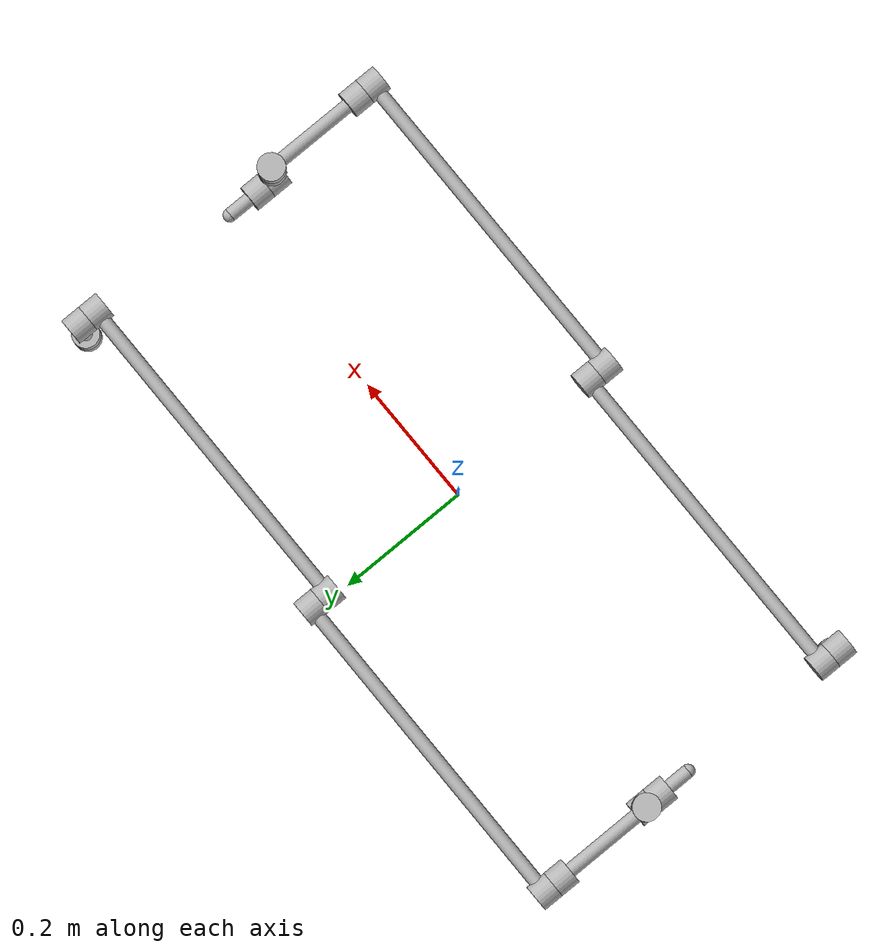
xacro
<?xml version="1.0"?>
<robot name="two_robot6R" xmlns:xacro="http://www.ros.org/wiki/xacro">
  <xacro:property name="radius" value="0.5"/>
  <xacro:property name="spacing" value="0.52"/>

  <xacro:include filename="$(find pyrobopath_examples)/urdf/robot6R.macro.xacro"/>
  <xacro:robot6R_macro prefix="rob1_"/>
  <xacro:robot6R_macro prefix="rob2_"/>

  <!-- Colors -->
  <material name="grey">
    <color rgba="0.7 0.7 0.7 1.0"/>
  </material>

  <!-- Connect to world -->
  <link name="world"/>
  <joint name="world_rob1_base" type="fixed">
    <parent link="world"/>
    <child link = "rob1_base_link"/>
    <origin xyz="-${radius} -${spacing/2} 0.0" rpy="0.0 0.0 0.0"/>
  </joint>
  <joint name="world_rob2_base" type="fixed">
    <parent link="world"/>
    <child link = "rob2_base_link"/>
    <origin xyz="${radius} ${spacing/2} 0.0" rpy="0.0 0.0 ${pi}"/>
  </joint>

  <!-- ROS2 control -->
  <xacro:include filename="$(find pyrobopath_examples)/urdf/robot6R.ros2_control.xacro"/>

  <ros2_control name="two_robot_ros2_control" type="system">
    <hardware>
      <plugin>mock_components/GenericSystem</plugin>
    </hardware>
    <xacro:robot6R_ros2_control prefix="rob1_"/>
    <xacro:robot6R_ros2_control prefix="rob2_"/>
  </ros2_control>
</robot>

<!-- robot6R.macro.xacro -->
<robot xmlns:xacro="http://www.ros.org/wiki/xacro">

  <!--
  A fictitious robot model for testing purposes.
  The kinematics is roughly inspired by the universal robots ur10.
  -->

  <xacro:macro name="robot6R_macro" params="prefix">

    <!-- joint properties -->
    <xacro:property name="joint_radius" value="0.02" />
    <xacro:property name="joint_length" value="0.03" />

    <!-- link properties -->
    <xacro:property name="link_radius" value="0.01" />
    <xacro:property name="link1_length" value="0.15" />
    <xacro:property name="link2_length" value="0.5" />
    <xacro:property name="link3_length" value="0.5" />
    <xacro:property name="link4_length" value="0.15" />
    <xacro:property name="link5_length" value="0.10" />
    <xacro:property name="link6_length" value="0.05" />

    <!-- links -->
    <link name="${prefix}base_link">
      <visual name="joint">
        <origin xyz="0 0 ${joint_length / 2.0}" rpy="0 0 0" />
        <geometry>
          <cylinder length="${joint_length}" radius="${joint_radius}"/>
        </geometry>
        <material name="grey"/>
      </visual>
    </link>
    <link name="${prefix}link1">
      <visual name="joint1">
        <origin xyz="0 0 0" rpy="0 0 0" />
        <geometry>
          <cylinder length="${joint_length}" radius="${joint_radius}"/>
        </geometry>
        <material name="grey"/>
      </visual>
      <visual name="link">
        <origin xyz="0 0 ${link1_length / 2.0}" rpy="0 0 0" />
        <geometry>
          <cylinder length="${link1_length}" radius="${link_radius}"/>
        </geometry>
        <material name="grey"/>
      </visual>
      <visual name="joint2">
        <origin xyz="0 0 ${link1_length}" rpy="${pi / 2.0} 0 0" />
        <geometry>
          <cylinder length="${joint_length}" radius="${joint_radius}"/>
        </geometry>
        <material name="grey"/>
      </visual>
    </link>
    <link name="${prefix}link2">
      <visual name="joint2">
        <origin xyz="0 0 0" rpy="${pi / 2.0} 0 0" />
        <geometry>
          <cylinder length="${joint_length}" radius="${joint_radius}"/>
        </geometry>
        <material name="grey"/>
      </visual>
      <visual name="link">
        <origin xyz="0 0 ${link2_length / 2.0}" rpy="0 0 0" />
        <geometry>
          <cylinder length="${link2_length}" radius="${link_radius}"/>
        </geometry>
        <material name="grey"/>
      </visual>
      <visual name="joint3">
        <origin xyz="0 0 ${link2_length}" rpy="${pi / 2.0} 0 0" />
        <geometry>
          <cylinder length="${joint_length}" radius="${joint_radius}"/>
        </geometry>
        <material name="grey"/>
      </visual>
    </link>
    <link name="${prefix}link3">
      <visual name="joint3">
        <origin xyz="0 0 0" rpy="${pi / 2.0} 0 0" />
        <geometry>
          <cylinder length="${joint_length}" radius="${joint_radius}"/>
        </geometry>
        <material name="grey"/>
      </visual>
      <visual name="link">
        <origin xyz="0 0 ${link3_length / 2.0}" rpy="0 0 0" />
        <geometry>
          <cylinder length="${link3_length}" radius="${link_radius}"/>
        </geometry>
        <material name="grey"/>
      </visual>
      <visual name="joint4">
        <origin xyz="0 0 ${link3_length}" rpy="${pi / 2.0} 0 0" />
        <geometry>
          <cylinder length="${joint_length}" radius="${joint_radius}"/>
        </geometry>
        <material name="grey"/>
      </visual>
    </link>
    <link name="${prefix}link4">
      <visual name="joint4">
        <origin xyz="0 0 0" rpy="${pi / 2.0} 0 0" />
        <geometry>
          <cylinder length="${joint_length}" radius="${joint_radius}"/>
        </geometry>
        <material name="grey"/>
      </visual>
      <visual name="link">
        <origin xyz="0 ${link4_length / 2.0} 0" rpy="${pi / 2.0} 0 0" />
        <geometry>
          <cylinder length="${link4_length}" radius="${link_radius}"/>
        </geometry>
        <material name="grey"/>
      </visual>
      <visual name="joint5">
        <origin xyz="0 ${link4_length} 0" rpy="0 0 0" />
        <geometry>
          <cylinder length="${joint_length}" radius="${joint_radius}"/>
        </geometry>
        <material name="grey"/>
      </visual>
    </link>
    <link name="${prefix}link5">
      <visual name="joint5">
        <origin xyz="0 0 0" rpy="0 0 0" />
        <geometry>
          <cylinder length="${joint_length}" radius="${joint_radius}"/>
        </geometry>
        <material name="grey"/>
      </visual>
      <visual name="link">
        <origin xyz="0 0 ${link5_length / 2.0}" rpy="0 0 0" />
        <geometry>
          <cylinder length="${link5_length}" radius="${link_radius}"/>
        </geometry>
        <material name="grey"/>
      </visual>
      <visual name="joint6">
        <origin xyz="0 0 ${link5_length}" rpy="${pi / 2.0} 0 0" />
        <geometry>
          <cylinder length="${joint_length}" radius="${joint_radius}"/>
        </geometry>
        <material name="grey"/>
      </visual>
    </link>
    <link name="${prefix}link6">
      <visual name="joint6">
        <origin xyz="0 0 0" rpy="${pi / 2.0} 0 0" />
        <geometry>
          <cylinder length="${joint_length}" radius="${joint_radius}"/>
        </geometry>
        <material name="grey"/>
      </visual>
      <visual name="link">
        <origin xyz="0 ${link6_length / 2.0} 0" rpy="${-pi / 2.0} 0 0" />
        <geometry>
          <cylinder length="${link6_length}" radius="${link_radius}"/>
        </geometry>
        <material name="grey"/>
      </visual>
    </link>

    <!-- joints -->
    <joint name="${prefix}joint1" type="revolute">
      <parent link="${prefix}base_link" />
      <child link = "${prefix}link1" />
      <origin xyz="0.0 0.0 ${3.0 / 2.0 * joint_length}" rpy="0.0 0.0 0.0" />
      <axis xyz="0 0 1" />
      <limit lower="${-2.0 * pi}" upper="${2.0 * pi}" effort="1.0" velocity="10.0"/>
    </joint>
    <joint name="${prefix}joint2" type="revolute">
      <parent link="${prefix}link1" />
      <child link = "${prefix}link2" />
      <origin xyz="0.0 ${joint_length} ${link1_length}" rpy="0.0 ${pi / 2.0} 0.0" />
      <axis xyz="0 1 0" />
      <limit lower="${-2.0 * pi}" upper="${2.0 * pi}" effort="1.0" velocity="10.0"/>
    </joint>
    <joint name="${prefix}joint3" type="revolute">
      <parent link="${prefix}link2" />
      <child link = "${prefix}link3" />
      <origin xyz="0.0 -${joint_length} ${link2_length}" rpy="0.0 0.0 0.0" />
      <axis xyz="0 1 0" />
      <limit lower="${-pi}" upper="${pi}" effort="1.0" velocity="10.0"/>
    </joint>
    <joint name="${prefix}joint4" type="revolute">
      <parent link="${prefix}link3" />
      <child link = "${prefix}link4" />
      <origin xyz="0.0 ${joint_length} ${link3_length}" rpy="0.0 ${pi / 2.0} 0.0" />
      <axis xyz="0 1 0" />
      <limit lower="${-2.0 * pi}" upper="${2.0 * pi}" effort="1.0" velocity="10.0"/>
    </joint>
    <joint name="${prefix}joint5" type="revolute">
      <parent link="${prefix}link4" />
      <child link = "${prefix}link5" />
      <origin xyz="0.0 ${link4_length} ${joint_length}" rpy="0.0 0.0 0.0" />
      <axis xyz="0 0 1" />
      <limit lower="${-2.0 * pi}" upper="${2.0 * pi}" effort="1.0" velocity="10.0"/>
    </joint>
    <joint name="${prefix}joint6" type="revolute">
      <parent link="${prefix}link5" />
      <child link = "${prefix}link6" />
      <origin xyz="0.0 ${joint_length} ${link5_length}" rpy="0.0 0.0 0.0" />
      <axis xyz="0 1 0" />
      <limit lower="${-2.0 * pi}" upper="${2.0 * pi}" effort="1.0" velocity="10.0"/>
    </joint>

    <!-- The default end-effector -->
    <joint name="${prefix}tool0_joint" type="fixed">
      <origin xyz="0 ${link6_length} 0" rpy="${-pi/2} 0 0"/>
      <parent link="${prefix}link6"/>
      <child link="${prefix}tool0"/>
    </joint>
    <link name="${prefix}tool0">
      <visual>
        <origin xyz="0 0 0" rpy="0 0 0" />
        <geometry>
          <sphere radius="${link_radius}"/>
        </geometry>
        <material name="grey"/>
      </visual>
    </link>
    <link name="${prefix}tool"/>
    <joint name="${prefix}tool_joint" type="fixed">
      <origin xyz="0 0 0" rpy="${-pi/2} ${-pi/2} 0"/>
      <parent link="${prefix}tool0"/>
      <child link="${prefix}tool"/>
    </joint>
  </xacro:macro>
</robot>
